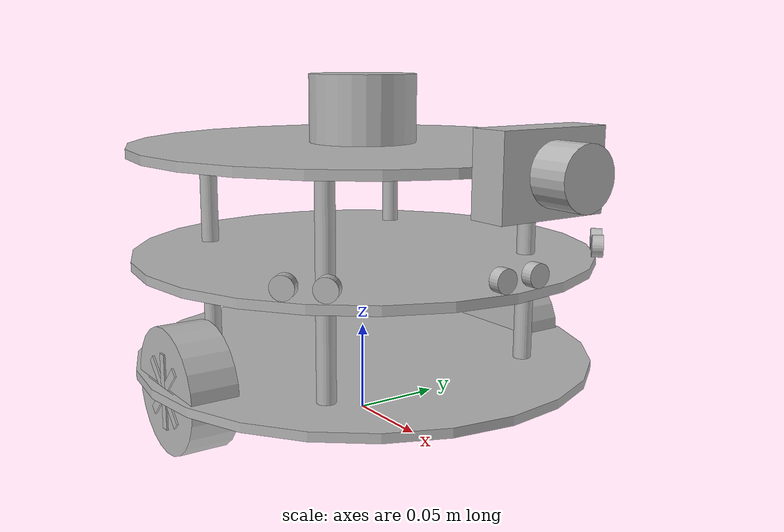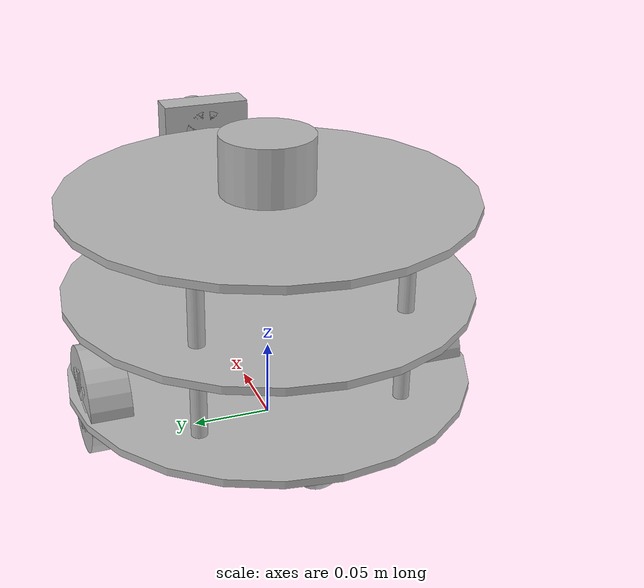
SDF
<sdf version='1.7'>
  <model name='obot'>
    <link name='base_link'>
      <inertial>
        <pose>-0.080778 5.6e-05 0.040931 0 -0 0</pose>
        <mass>2.16</mass>
        <inertia>
          <ixx>0.0105947</ixx>
          <ixy>-1.62508e-05</ixy>
          <ixz>-0.00146803</ixz>
          <iyy>0.0120197</iyy>
          <iyz>-7.61316e-06</iyz>
          <izz>0.0185469</izz>
        </inertia>
      </inertial>
      <collision name='base_link_fixed_joint_lump__castor_wheel_collision'>
        <pose>-0.086667 0 0.017 0 -0 0</pose>
        <geometry>
          <sphere>
            <radius>0.017</radius>
          </sphere>
        </geometry>
        <surface>
          <contact>
            <ode/>
          </contact>
          <friction>
            <ode>
              <mu>0.001</mu>
              <mu2>0.001</mu2>
            </ode>
          </friction>
        </surface>
      </collision>
      <collision name='base_link_fixed_joint_lump__chassis_collision_1'>
        <pose>0 0 0.094 0 -0 0</pose>
        <geometry>
          <cylinder>
            <length>0.12</length>
            <radius>0.13</radius>
          </cylinder>
        </geometry>
      </collision>
      <collision name='base_link_fixed_joint_lump__camera_collision_2'>
        <pose>0.15 0 0.154 0 -1.5708 0</pose>
        <geometry>
          <cylinder>
            <length>0.04</length>
            <radius>0.02</radius>
          </cylinder>
        </geometry>
      </collision>
      <collision name='base_link_fixed_joint_lump__lidar_collision_3'>
        <pose>0 0 0.174 0 -0 0</pose>
        <geometry>
          <cylinder>
            <length>0.04</length>
            <radius>0.03</radius>
          </cylinder>
        </geometry>
        <surface>
          <contact>
            <ode/>
          </contact>
          <friction>
            <ode/>
          </friction>
        </surface>
      </collision>
      <collision name='base_link_fixed_joint_lump__sonar_front_collision_4'>
        <pose>0.13 0.01 0.104 0 1.5708 0</pose>
        <geometry>
          <cylinder>
            <length>0.006</length>
            <radius>0.006</radius>
          </cylinder>
        </geometry>
      </collision>
      <collision name='base_link_fixed_joint_lump__sonar_front_collision_5'>
        <pose>0.13 -0.01 0.104 0 1.5708 0</pose>
        <geometry>
          <cylinder>
            <length>0.006</length>
            <radius>0.006</radius>
          </cylinder>
        </geometry>
      </collision>
      <collision name='base_link_fixed_joint_lump__sonar_left_collision_6'>
        <pose>0.084852 0.098994 0.104 -0.785398 1.5708 0</pose>
        <geometry>
          <cylinder>
            <length>0.006</length>
            <radius>0.006</radius>
          </cylinder>
        </geometry>
      </collision>
      <collision name='base_link_fixed_joint_lump__sonar_left_collision_7'>
        <pose>0.098994 0.084852 0.104 -0.785398 1.5708 0</pose>
        <geometry>
          <cylinder>
            <length>0.006</length>
            <radius>0.006</radius>
          </cylinder>
        </geometry>
      </collision>
      <collision name='base_link_fixed_joint_lump__sonar_right_collision_8'>
        <pose>0.098994 -0.084852 0.104 0.785398 1.5708 0</pose>
        <geometry>
          <cylinder>
            <length>0.006</length>
            <radius>0.006</radius>
          </cylinder>
        </geometry>
      </collision>
      <collision name='base_link_fixed_joint_lump__sonar_right_collision_9'>
        <pose>0.084852 -0.098994 0.104 0.785398 1.5708 0</pose>
        <geometry>
          <cylinder>
            <length>0.006</length>
            <radius>0.006</radius>
          </cylinder>
        </geometry>
      </collision>
      <visual name='base_link_fixed_joint_lump__castor_wheel_visual'>
        <pose>-0.086667 0 0.017 0 -0 0</pose>
        <geometry>
          <sphere>
            <radius>0.017</radius>
          </sphere>
        </geometry>
      </visual>
      <visual name='base_link_fixed_joint_lump__chassis_visual_1'>
        <pose>0 0 0.034 0 -0 0</pose>
        <geometry>
          <cylinder>
            <length>0.005</length>
            <radius>0.13</radius>
          </cylinder>
        </geometry>
      </visual>
      <visual name='base_link_fixed_joint_lump__chassis_visual_2'>
        <pose>0 0 0.094 0 -0 0</pose>
        <geometry>
          <cylinder>
            <length>0.005</length>
            <radius>0.13</radius>
          </cylinder>
        </geometry>
      </visual>
      <visual name='base_link_fixed_joint_lump__chassis_visual_3'>
        <pose>0 0 0.154 0 -0 0</pose>
        <geometry>
          <cylinder>
            <length>0.005</length>
            <radius>0.13</radius>
          </cylinder>
        </geometry>
      </visual>
      <visual name='base_link_fixed_joint_lump__chassis_visual_4'>
        <pose>0.065 0.065 0.094 0 -0 0</pose>
        <geometry>
          <cylinder>
            <length>0.12</length>
            <radius>0.005</radius>
          </cylinder>
        </geometry>
      </visual>
      <visual name='base_link_fixed_joint_lump__chassis_visual_5'>
        <pose>0.065 -0.065 0.094 0 -0 0</pose>
        <geometry>
          <cylinder>
            <length>0.12</length>
            <radius>0.005</radius>
          </cylinder>
        </geometry>
      </visual>
      <visual name='base_link_fixed_joint_lump__chassis_visual_6'>
        <pose>-0.065 0.065 0.094 0 -0 0</pose>
        <geometry>
          <cylinder>
            <length>0.12</length>
            <radius>0.005</radius>
          </cylinder>
        </geometry>
      </visual>
      <visual name='base_link_fixed_joint_lump__chassis_visual_7'>
        <pose>-0.065 -0.065 0.094 0 -0 0</pose>
        <geometry>
          <cylinder>
            <length>0.12</length>
            <radius>0.005</radius>
          </cylinder>
        </geometry>
      </visual>
      <visual name='base_link_fixed_joint_lump__camera_visual_8'>
        <pose>0.15 0 0.154 0 -1.5708 0</pose>
        <geometry>
          <cylinder>
            <length>0.04</length>
            <radius>0.015</radius>
          </cylinder>
        </geometry>
      </visual>
      <visual name='base_link_fixed_joint_lump__camera_visual_9'>
        <pose>0.14 0 0.154 0 -1.5708 0</pose>
        <geometry>
          <box>
            <size>0.04 0.06 0.02</size>
          </box>
        </geometry>
      </visual>
      <visual name='base_link_fixed_joint_lump__lidar_visual_10'>
        <pose>0 0 0.174 0 -0 0</pose>
        <geometry>
          <cylinder>
            <length>0.04</length>
            <radius>0.03</radius>
          </cylinder>
        </geometry>
      </visual>
      <visual name='base_link_fixed_joint_lump__sonar_front_visual_11'>
        <pose>0.13 0.01 0.104 0 1.5708 0</pose>
        <geometry>
          <cylinder>
            <length>0.006</length>
            <radius>0.006</radius>
          </cylinder>
        </geometry>
      </visual>
      <visual name='base_link_fixed_joint_lump__sonar_front_visual_12'>
        <pose>0.13 -0.01 0.104 0 1.5708 0</pose>
        <geometry>
          <cylinder>
            <length>0.006</length>
            <radius>0.006</radius>
          </cylinder>
        </geometry>
      </visual>
      <visual name='base_link_fixed_joint_lump__sonar_left_visual_13'>
        <pose>0.084852 0.098994 0.104 -0.785398 1.5708 0</pose>
        <geometry>
          <cylinder>
            <length>0.006</length>
            <radius>0.006</radius>
          </cylinder>
        </geometry>
      </visual>
      <visual name='base_link_fixed_joint_lump__sonar_left_visual_14'>
        <pose>0.098994 0.084852 0.104 -0.785398 1.5708 0</pose>
        <geometry>
          <cylinder>
            <length>0.006</length>
            <radius>0.006</radius>
          </cylinder>
        </geometry>
      </visual>
      <visual name='base_link_fixed_joint_lump__sonar_right_visual_15'>
        <pose>0.098994 -0.084852 0.104 0.785398 1.5708 0</pose>
        <geometry>
          <cylinder>
            <length>0.006</length>
            <radius>0.006</radius>
          </cylinder>
        </geometry>
      </visual>
      <visual name='base_link_fixed_joint_lump__sonar_right_visual_16'>
        <pose>0.084852 -0.098994 0.104 0.785398 1.5708 0</pose>
        <geometry>
          <cylinder>
            <length>0.006</length>
            <radius>0.006</radius>
          </cylinder>
        </geometry>
      </visual>
      <sensor name='imu' type='imu'>
        <always_on>1</always_on>
        <update_rate>1</update_rate>
        <visualize>1</visualize>
        <topic>imu</topic>
        <pose>0 0 0.094 0 -0 0</pose>
      </sensor>
      <sensor name='lidar' type='gpu_lidar'>
        <topic>lidar</topic>
        <update_rate>10</update_rate>
        <ray>
          <scan>
            <horizontal>
              <samples>360</samples>
              <min_angle>-6.28319</min_angle>
              <max_angle>6.28319</max_angle>
              <resolution>0.5</resolution>
            </horizontal>
            <vertical>
              <samples>1</samples>
              <resolution>0.01</resolution>
              <min_angle>0</min_angle>
              <max_angle>0</max_angle>
            </vertical>
          </scan>
          <range>
            <min>0.1</min>
            <max>10</max>
            <resolution>0.01</resolution>
          </range>
        </ray>
        <always_on>1</always_on>
        <visualize>0</visualize>
        <pose>0 0 0.194 0 -0 0</pose>
      </sensor>
    </link>
    <joint name='left_wheel_joint' type='revolute'>
      <pose relative_to='base_link'>0 0.11 0.034 -1.5708 0 0</pose>
      <parent>base_link</parent>
      <child>left_wheel</child>
      <axis>
        <xyz>0 0 1</xyz>
        <limit>
          <lower>-1e+16</lower>
          <upper>1e+16</upper>
        </limit>
        <dynamics>
          <spring_reference>0</spring_reference>
          <spring_stiffness>0</spring_stiffness>
        </dynamics>
      </axis>
    </joint>
    <link name='left_wheel'>
      <pose relative_to='left_wheel_joint'>0 0 0 0 -0 0</pose>
      <inertial>
        <pose>0 0 0 0 -0 0</pose>
        <mass>0.08</mass>
        <inertia>
          <ixx>2.76267e-05</ixx>
          <ixy>0</ixy>
          <ixz>0</ixz>
          <iyy>2.76267e-05</iyy>
          <iyz>0</iyz>
          <izz>4.624e-05</izz>
        </inertia>
      </inertial>
      <collision name='left_wheel_collision'>
        <pose>0 0 0 0 -0 0</pose>
        <geometry>
          <cylinder>
            <length>0.026</length>
            <radius>0.034</radius>
          </cylinder>
        </geometry>
        <surface>
          <contact>
            <ode/>
          </contact>
          <friction>
            <ode>
              <mu>1</mu>
              <mu2>1</mu2>
            </ode>
          </friction>
        </surface>
      </collision>
      <visual name='left_wheel_visual'>
        <pose>0 0 0 0 -0 0</pose>
        <geometry>
          <cylinder>
            <length>0.026</length>
            <radius>0.034</radius>
          </cylinder>
        </geometry>
      </visual>
      <visual name='left_wheel_fixed_joint_lump__left_rim_visual_1'>
        <pose>0 0 0.001 0 -0 0</pose>
        <geometry>
          <box>
            <size>0.005 0.0408 0.026</size>
          </box>
        </geometry>
      </visual>
      <visual name='left_wheel_fixed_joint_lump__left_rim_visual_2'>
        <pose>0 0 0.001 0 -0 1.5708</pose>
        <geometry>
          <box>
            <size>0.005 0.0408 0.026</size>
          </box>
        </geometry>
      </visual>
      <visual name='left_wheel_fixed_joint_lump__left_rim_visual_3'>
        <pose>0 0 0.001 0 0 -0.785398</pose>
        <geometry>
          <box>
            <size>0.005 0.0408 0.026</size>
          </box>
        </geometry>
      </visual>
      <visual name='left_wheel_fixed_joint_lump__left_rim_visual_4'>
        <pose>0 0 0.001 0 -0 0.785398</pose>
        <geometry>
          <box>
            <size>0.005 0.0408 0.026</size>
          </box>
        </geometry>
      </visual>
    </link>
    <joint name='right_wheel_joint' type='revolute'>
      <pose relative_to='base_link'>0 -0.11 0.034 -1.5708 0 0</pose>
      <parent>base_link</parent>
      <child>right_wheel</child>
      <axis>
        <xyz>0 0 1</xyz>
        <limit>
          <lower>-1e+16</lower>
          <upper>1e+16</upper>
        </limit>
        <dynamics>
          <spring_reference>0</spring_reference>
          <spring_stiffness>0</spring_stiffness>
        </dynamics>
      </axis>
    </joint>
    <link name='right_wheel'>
      <pose relative_to='right_wheel_joint'>0 0 0 0 -0 0</pose>
      <inertial>
        <pose>0 0 0 0 -0 0</pose>
        <mass>0.08</mass>
        <inertia>
          <ixx>2.76267e-05</ixx>
          <ixy>0</ixy>
          <ixz>0</ixz>
          <iyy>2.76267e-05</iyy>
          <iyz>0</iyz>
          <izz>4.624e-05</izz>
        </inertia>
      </inertial>
      <collision name='right_wheel_collision'>
        <pose>0 0 0 0 -0 0</pose>
        <geometry>
          <cylinder>
            <length>0.026</length>
            <radius>0.034</radius>
          </cylinder>
        </geometry>
        <surface>
          <contact>
            <ode/>
          </contact>
          <friction>
            <ode>
              <mu>1</mu>
              <mu2>1</mu2>
            </ode>
          </friction>
        </surface>
      </collision>
      <visual name='right_wheel_visual'>
        <pose>0 0 0 0 -0 0</pose>
        <geometry>
          <cylinder>
            <length>0.026</length>
            <radius>0.034</radius>
          </cylinder>
        </geometry>
      </visual>
      <visual name='right_wheel_fixed_joint_lump__right_rim_visual_1'>
        <pose>0 0 -0.001 0 -0 0</pose>
        <geometry>
          <box>
            <size>0.005 0.0408 0.026</size>
          </box>
        </geometry>
      </visual>
      <visual name='right_wheel_fixed_joint_lump__right_rim_visual_2'>
        <pose>0 0 -0.001 0 -0 1.5708</pose>
        <geometry>
          <box>
            <size>0.005 0.0408 0.026</size>
          </box>
        </geometry>
      </visual>
      <visual name='right_wheel_fixed_joint_lump__right_rim_visual_3'>
        <pose>0 0 -0.001 0 0 -0.785398</pose>
        <geometry>
          <box>
            <size>0.005 0.0408 0.026</size>
          </box>
        </geometry>
      </visual>
      <visual name='right_wheel_fixed_joint_lump__right_rim_visual_4'>
        <pose>0 0 -0.001 0 -0 0.785398</pose>
        <geometry>
          <box>
            <size>0.005 0.0408 0.026</size>
          </box>
        </geometry>
      </visual>
    </link>
    <static>0</static>
    <plugin name='ignition::gazebo::systems::DiffDrive' filename='ignition-gazebo-diff-drive-system'>
      <left_joint>left_wheel_joint</left_joint>
      <right_joint>right_wheel_joint</right_joint>
      <wheel_separation>0.22</wheel_separation>
      <wheel_radius>0.034</wheel_radius>
      <max_linear_acceleration>5</max_linear_acceleration>
      <min_linear_acceleration>-5</min_linear_acceleration>
      <max_angular_acceleration>10</max_angular_acceleration>
      <min_angular_acceleration>-10</min_angular_acceleration>
      <max_linear_velocity>0.5</max_linear_velocity>
      <min_linear_velocity>-0.5</min_linear_velocity>
      <max_angular_velocity>1.5</max_angular_velocity>
      <min_angular_velocity>-1.5</min_angular_velocity>
    </plugin>
  </model>
</sdf>
